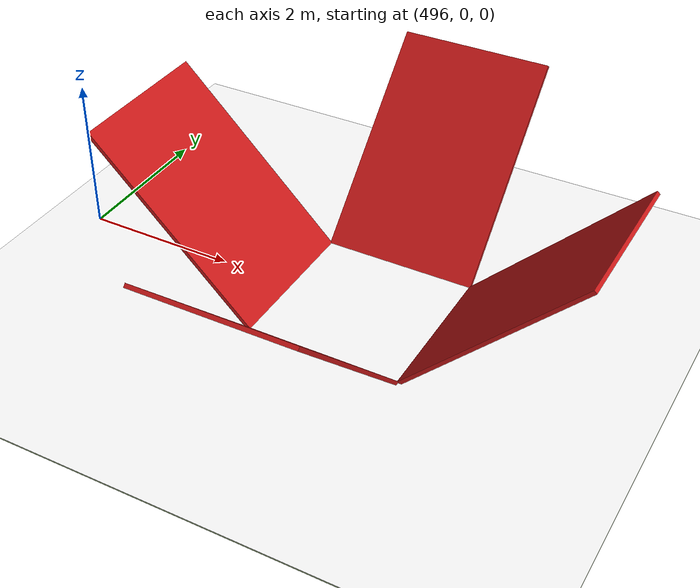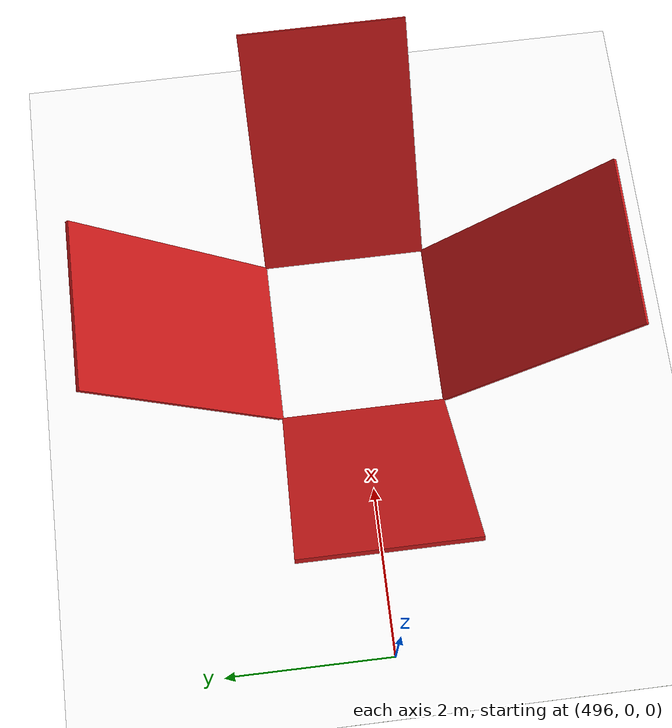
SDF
<?xml version='1.0' encoding='utf-8'?>
<sdf version="1.9">
  <world name="qr_measure">
    <physics type="ode">
      <max_step_size>0.004</max_step_size>
      <real_time_factor>1.0</real_time_factor>
      <real_time_update_rate>250</real_time_update_rate>
    </physics>
    <plugin name="gz::sim::systems::Physics" filename="gz-sim-physics-system" />
    <plugin name="gz::sim::systems::UserCommands" filename="gz-sim-user-commands-system" />
    <plugin name="gz::sim::systems::SceneBroadcaster" filename="gz-sim-scene-broadcaster-system" />
    <plugin name="gz::sim::systems::Contact" filename="gz-sim-contact-system" />
    <plugin name="gz::sim::systems::Imu" filename="gz-sim-imu-system" />
    <plugin name="gz::sim::systems::AirPressure" filename="gz-sim-air-pressure-system" />
    <plugin name="gz::sim::systems::ApplyLinkWrench" filename="gz-sim-apply-link-wrench-system" />
    <plugin name="gz::sim::systems::NavSat" filename="gz-sim-navsat-system" />
    <plugin name="gz::sim::systems::Sensors" filename="gz-sim-sensors-system">
      <render_engine>ogre2</render_engine>
    </plugin>
    <gui fullscreen="false">

      <plugin filename="MinimalScene" name="3D View">
        <gz-gui>
          <title>3D View</title>
          <property type="bool" key="showTitleBar">false</property>
          <property type="string" key="state">docked</property>
        </gz-gui>
        <engine>ogre2</engine>
        <scene>scene</scene>
        <ambient_light>0.4 0.4 0.4</ambient_light>
        <background_color>0.8 0.8 0.8</background_color>
        <camera_pose>-6 0 6 0 0.5 0</camera_pose>
        <camera_clip>
          <near>0.25</near>
          <far>25000</far>
        </camera_clip>
      </plugin>

      <plugin filename="EntityContextMenuPlugin" name="Entity context menu">
        <gz-gui>
          <property key="state" type="string">floating</property>
          <property key="width" type="double">5</property>
          <property key="height" type="double">5</property>
          <property key="showTitleBar" type="bool">false</property>
        </gz-gui>
      </plugin>
      <plugin filename="GzSceneManager" name="Scene Manager">
        <gz-gui>
          <property key="resizable" type="bool">false</property>
          <property key="width" type="double">5</property>
          <property key="height" type="double">5</property>
          <property key="state" type="string">floating</property>
          <property key="showTitleBar" type="bool">false</property>
        </gz-gui>
      </plugin>
      <plugin filename="InteractiveViewControl" name="Interactive view control">
        <gz-gui>
          <property key="resizable" type="bool">false</property>
          <property key="width" type="double">5</property>
          <property key="height" type="double">5</property>
          <property key="state" type="string">floating</property>
          <property key="showTitleBar" type="bool">false</property>
        </gz-gui>
      </plugin>
      <plugin filename="CameraTracking" name="Camera Tracking">
        <gz-gui>
          <property key="resizable" type="bool">false</property>
          <property key="width" type="double">5</property>
          <property key="height" type="double">5</property>
          <property key="state" type="string">floating</property>
          <property key="showTitleBar" type="bool">false</property>
        </gz-gui>
      </plugin>
      <plugin filename="MarkerManager" name="Marker manager">
        <gz-gui>
          <property key="resizable" type="bool">false</property>
          <property key="width" type="double">5</property>
          <property key="height" type="double">5</property>
          <property key="state" type="string">floating</property>
          <property key="showTitleBar" type="bool">false</property>
        </gz-gui>
      </plugin>
      <plugin filename="SelectEntities" name="Select Entities">
        <gz-gui>
          <anchors target="Select entities">
            <line own="right" target="right" />
            <line own="top" target="top" />
          </anchors>
          <property key="resizable" type="bool">false</property>
          <property key="width" type="double">5</property>
          <property key="height" type="double">5</property>
          <property key="state" type="string">floating</property>
          <property key="showTitleBar" type="bool">false</property>
        </gz-gui>
      </plugin>
      <plugin filename="VisualizationCapabilities" name="Visualization Capabilities">
        <gz-gui>
          <property key="resizable" type="bool">false</property>
          <property key="width" type="double">5</property>
          <property key="height" type="double">5</property>
          <property key="state" type="string">floating</property>
          <property key="showTitleBar" type="bool">false</property>
        </gz-gui>
      </plugin>
      <plugin filename="Spawn" name="Spawn Entities">
        <gz-gui>
          <anchors target="Select entities">
            <line own="right" target="right" />
            <line own="top" target="top" />
          </anchors>
          <property key="resizable" type="bool">false</property>
          <property key="width" type="double">5</property>
          <property key="height" type="double">5</property>
          <property key="state" type="string">floating</property>
          <property key="showTitleBar" type="bool">false</property>
        </gz-gui>
      </plugin>
      <plugin name="World control" filename="WorldControl">
        <gz-gui>
          <title>World control</title>
          <property type="bool" key="showTitleBar">0</property>
          <property type="bool" key="resizable">0</property>
          <property type="double" key="height">72</property>
          <property type="double" key="width">121</property>
          <property type="double" key="z">1</property>
          <property type="string" key="state">floating</property>
          <anchors target="3D View">
            <line own="left" target="left" />
            <line own="bottom" target="bottom" />
          </anchors>
        </gz-gui>
        <play_pause>1</play_pause>
        <step>1</step>
        <start_paused>1</start_paused>
      </plugin>
      <plugin name="World stats" filename="WorldStats">
        <gz-gui>
          <title>World stats</title>
          <property type="bool" key="showTitleBar">0</property>
          <property type="bool" key="resizable">0</property>
          <property type="double" key="height">110</property>
          <property type="double" key="width">290</property>
          <property type="double" key="z">1</property>
          <property type="string" key="state">floating</property>
          <anchors target="3D View">
            <line own="right" target="right" />
            <line own="bottom" target="bottom" />
          </anchors>
        </gz-gui>
        <sim_time>1</sim_time>
        <real_time>1</real_time>
        <real_time_factor>1</real_time_factor>
        <iterations>1</iterations>
      </plugin>
      <plugin name="Entity tree" filename="EntityTree" />
    </gui>
    <gravity>0 0 -9.8</gravity>
    <magnetic_field>6e-06 2.3e-05 -4.2e-05</magnetic_field>
    <atmosphere type="adiabatic" />
    <model name="ground_plane">
      <static>true</static>
      <link name="link">
        <collision name="collision">
          <geometry>
            <plane>
              <normal>0 0 1</normal>
              <size>1 1</size>
            </plane>
          </geometry>
          <surface>
            <friction>
              <ode />
            </friction>
            <bounce />
            <contact />
          </surface>
        </collision>
        <visual name="visual">
          <geometry>
            <plane>
              <normal>0 0 1</normal>
              <size>100 100</size>
            </plane>
          </geometry>
          <material>
            <ambient>0.30 0.38 0.20 1</ambient>
            <diffuse>0.42 0.55 0.27 1</diffuse>
            <specular>0.02 0.02 0.02 1</specular>
          </material>
        </visual>
        <pose>0 0 0 0 -0 0</pose>
        <inertial>
          <pose>0 0 0 0 -0 0</pose>
          <mass>1</mass>
          <inertia>
            <ixx>1</ixx>
            <ixy>0</ixy>
            <ixz>0</ixz>
            <iyy>1</iyy>
            <iyz>0</iyz>
            <izz>1</izz>
          </inertia>
        </inertial>
        <enable_wind>false</enable_wind>
      </link>
      <pose>0 0 0 0 -0 0</pose>
      <self_collide>false</self_collide>
    </model>
    <light name="sunUTC" type="directional">
      <pose>0 0 500 0 -0 0</pose>
      <cast_shadows>true</cast_shadows>
      <intensity>1</intensity>
      <direction>0.001 0.625 -0.78</direction>
      <diffuse>0.904 0.904 0.904 1</diffuse>
      <specular>0.271 0.271 0.271 1</specular>
      <attenuation>
        <range>2000</range>
        <linear>0</linear>
        <constant>1</constant>
        <quadratic>0</quadratic>
      </attenuation>
      <spot>
        <inner_angle>0</inner_angle>
        <outer_angle>0</outer_angle>
        <falloff>0</falloff>
      </spot>
    </light>
    <spherical_coordinates>
      <surface_model>EARTH_WGS84</surface_model>
      <world_frame_orientation>ENU</world_frame_orientation>
      <latitude_deg>47.397971057728974</latitude_deg>
      <longitude_deg> 8.546163739800146</longitude_deg>
      <elevation>0</elevation>
    </spherical_coordinates>
  <scene>
      <sky>
        <clouds><speed>8</speed></clouds>
      </sky>
      <grid>false</grid>
      <ambient>0.6 0.6 0.6 1</ambient>
      <background>0.55 0.70 0.90 1</background>
      <shadows>true</shadows>
    </scene><light type="directional" name="sun_fill">
      <cast_shadows>false</cast_shadows>
      <pose>200 200 300 0 0 0</pose>
      <diffuse>0.35 0.35 0.40 1</diffuse>
      <specular>0.10 0.10 0.10 1</specular>
      <attenuation>
        <range>2000</range><constant>1</constant>
        <linear>0</linear><quadratic>0</quadratic>
      </attenuation>
      <direction>-0.3 -0.3 -0.9</direction>
    </light><include>
      <uri>model://grass_field</uri>
      <name>grass_field</name>
      <pose>500.0 0.0 0 0 0 0</pose>
    </include><include>
      <uri>model://qr_pad_v1</uri>
      <name>qr_pad</name>
      <pose>500.0 0.0 0 0 0 0</pose>
    </include><model name="cam60">
      <static>true</static>
      <pose>457.9875 0.0000 60.0000 0 0.959931 0</pose>
      <link name="link">
        <sensor name="cam60" type="camera">
          <camera>
            <horizontal_fov>0.8950399503143397</horizontal_fov>
            <image><width>1920</width><height>1080</height></image>
            <clip><near>0.1</near><far>3000</far></clip>
          </camera>
          <always_on>1</always_on>
          <update_rate>10</update_rate>
          <topic>cam60</topic>
        </sensor>
      </link>
    </model><model name="cam50">
      <static>true</static>
      <pose>464.9896 0.0000 50.0000 0 0.959931 0</pose>
      <link name="link">
        <sensor name="cam50" type="camera">
          <camera>
            <horizontal_fov>0.8950399503143397</horizontal_fov>
            <image><width>1920</width><height>1080</height></image>
            <clip><near>0.1</near><far>3000</far></clip>
          </camera>
          <always_on>1</always_on>
          <update_rate>10</update_rate>
          <topic>cam50</topic>
        </sensor>
      </link>
    </model><model name="cam40">
      <static>true</static>
      <pose>471.9917 0.0000 40.0000 0 0.959931 0</pose>
      <link name="link">
        <sensor name="cam40" type="camera">
          <camera>
            <horizontal_fov>0.8950399503143397</horizontal_fov>
            <image><width>1920</width><height>1080</height></image>
            <clip><near>0.1</near><far>3000</far></clip>
          </camera>
          <always_on>1</always_on>
          <update_rate>10</update_rate>
          <topic>cam40</topic>
        </sensor>
      </link>
    </model><model name="cam30">
      <static>true</static>
      <pose>478.9938 0.0000 30.0000 0 0.959931 0</pose>
      <link name="link">
        <sensor name="cam30" type="camera">
          <camera>
            <horizontal_fov>0.8950399503143397</horizontal_fov>
            <image><width>1920</width><height>1080</height></image>
            <clip><near>0.1</near><far>3000</far></clip>
          </camera>
          <always_on>1</always_on>
          <update_rate>10</update_rate>
          <topic>cam30</topic>
        </sensor>
      </link>
    </model><model name="cam25">
      <static>true</static>
      <pose>482.4948 0.0000 25.0000 0 0.959931 0</pose>
      <link name="link">
        <sensor name="cam25" type="camera">
          <camera>
            <horizontal_fov>0.8950399503143397</horizontal_fov>
            <image><width>1920</width><height>1080</height></image>
            <clip><near>0.1</near><far>3000</far></clip>
          </camera>
          <always_on>1</always_on>
          <update_rate>10</update_rate>
          <topic>cam25</topic>
        </sensor>
      </link>
    </model><model name="cam20">
      <static>true</static>
      <pose>485.9958 0.0000 20.0000 0 0.959931 0</pose>
      <link name="link">
        <sensor name="cam20" type="camera">
          <camera>
            <horizontal_fov>0.8950399503143397</horizontal_fov>
            <image><width>1920</width><height>1080</height></image>
            <clip><near>0.1</near><far>3000</far></clip>
          </camera>
          <always_on>1</always_on>
          <update_rate>10</update_rate>
          <topic>cam20</topic>
        </sensor>
      </link>
    </model></world>
</sdf>

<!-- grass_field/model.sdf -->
<sdf version="1.9">
  <model name="grass_field">
    <static>true</static>
    <link name="field">
      <!-- 1 cm above the ground plane, to avoid z-fighting -->
      <pose>0 0 0.005 0 0 0</pose>
      <visual name="visual">
        <cast_shadows>false</cast_shadows>
        <geometry>
          <box><size>160 160 0.01</size></box>
        </geometry>
        <material>
          <ambient>0.5 0.55 0.4 1</ambient>
          <diffuse>1 1 1 1</diffuse>
          <specular>0.02 0.02 0.02 1</specular>
          <pbr>
            <metal>
              <albedo_map>materials/textures/grass.png</albedo_map>
              <roughness>1.0</roughness>
              <metalness>0.0</metalness>
            </metal>
          </pbr>
        </material>
      </visual>
    </link>
  </model>
</sdf>

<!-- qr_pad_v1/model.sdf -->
<sdf version="1.9">
  <model name="qr_pad_v1">
    <static>true</static>

    <link name="center_plate">
      <pose>0 0 0.01 0 0 0</pose>
      <visual name="visual">
        <geometry>
          <box>
            <size>2 2 0.02</size>
          </box>
        </geometry>
        <material>
          <ambient>1 1 1 1</ambient>
          <diffuse>1 1 1 1</diffuse>
          <pbr>
            <metal>
              <albedo_map>materials/textures/qr_code.png</albedo_map>
            </metal>
          </pbr>
        </material>
      </visual>
    </link>

    <link name="plate_north">
      <pose>2.06 0 1.06 0 -0.7854 0</pose>
      <visual name="visual">
        <geometry>
          <box><size>3 2 0.05</size></box>
        </geometry>
        <material><diffuse>0.8 0.1 0.1 1</diffuse></material>
      </visual>
    </link>

    <link name="plate_south">
      <pose>-2.06 0 1.06 0 0.7854 0</pose>
      <visual name="visual">
        <geometry>
          <box><size>3 2 0.05</size></box>
        </geometry>
        <material><diffuse>0.8 0.1 0.1 1</diffuse></material>
      </visual>
    </link>

    <link name="plate_east">
      <pose>0 2.06 1.06 0.7854 0 0</pose>
      <visual name="visual">
        <geometry>
          <box><size>2 3 0.05</size></box> </geometry>
        <material><diffuse>0.8 0.1 0.1 1</diffuse></material>
      </visual>
    </link>

    <link name="plate_west">
      <pose>0 -2.06 1.06 -0.7854 0 0</pose>
      <visual name="visual">
        <geometry>
          <box><size>2 3 0.05</size></box>
        </geometry>
        <material><diffuse>0.8 0.1 0.1 1</diffuse></material>
      </visual>
    </link>

  </model>
</sdf>
